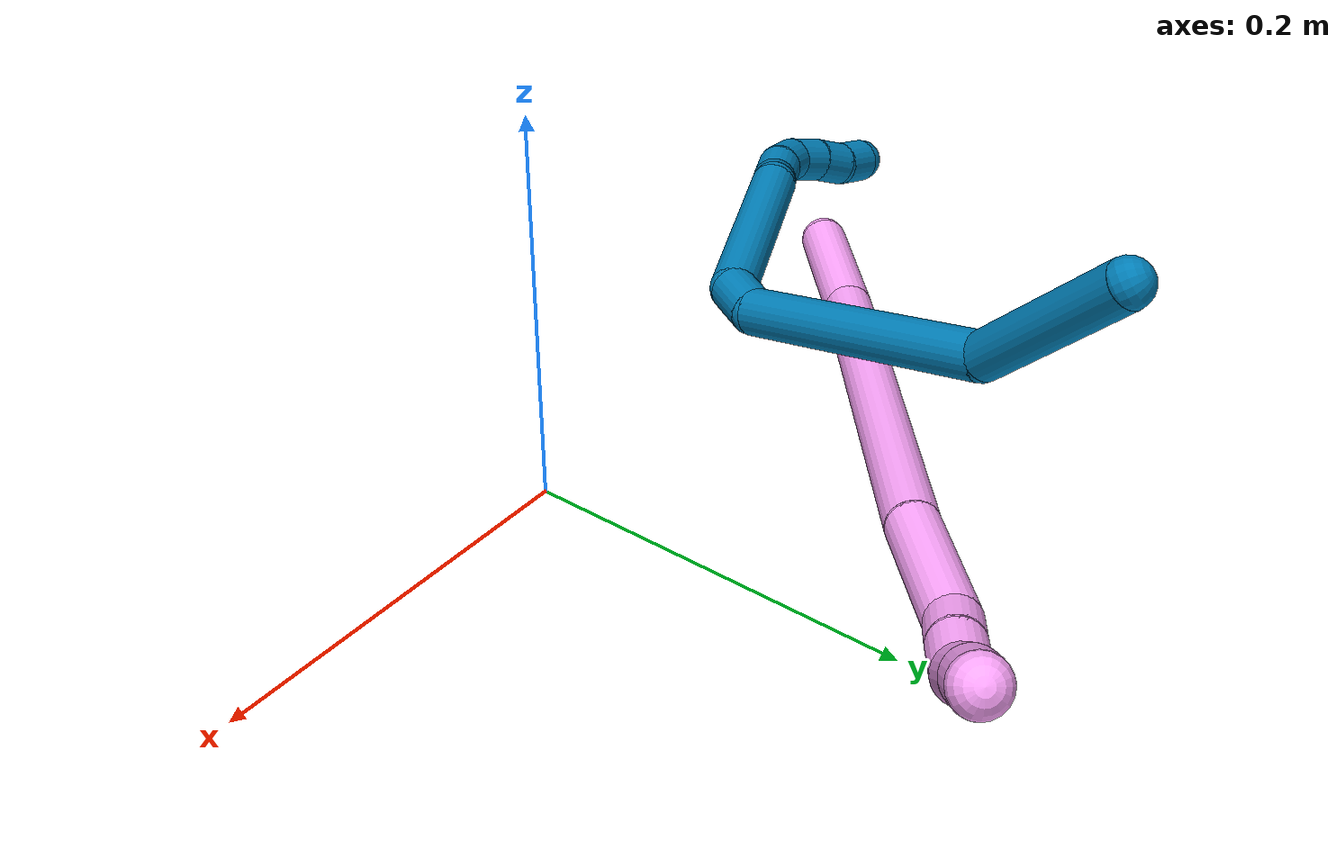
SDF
<sdf version="1.7">
 <world name="default">
  <model name="photoneo_s_sensor">
   <static>1</static>
   <pose>0 0 2 1.57079 1.57079 3.14159</pose>
   <link name="link">
    <inertial><mass>0.1</mass></inertial>
    <sensor name="sensor" type="depth">
     <update_rate>30</update_rate>
     <camera>
      <horizontal_fov>1.22</horizontal_fov>
      <image><width>1920</width><height>1200</height><format>B8G8R8</format></image>
      <clip><near>0.1</near><far>4</far></clip>
      <depth_camera><output>points</output></depth_camera>
     </camera>
     <plugin name="camera_plugin" filename="libgazebo_ros_depth_camera.so">
      <baseline>0.2</baseline>
      <alwaysOn>1</alwaysOn>
      <updateRate>0.0</updateRate>
      <cameraName>camera_ir</cameraName>
      <imageTopicName>/camera/color/image_raw</imageTopicName>
      <cameraInfoTopicName>/camera/color/camera_info</cameraInfoTopicName>
      <depthImageTopicName>/camera/depth/image_raw</depthImageTopicName>
      <depthImageCameraInfoTopicName>/camera/depth/camera_info</depthImageCameraInfoTopicName>
      <pointCloudTopicName>/camera/depth/points</pointCloudTopicName>
      <frameName>fr_optical</frameName>
      <pointCloudCutoff>0.1</pointCloudCutoff>
      <pointCloudCutoffMax>2.0</pointCloudCutoffMax>
      <distortionK1>0</distortionK1>
      <distortionK2>0</distortionK2>
      <distortionK3>0</distortionK3>
      <distortionT1>0</distortionT1>
      <distortionT2>0</distortionT2>
      <CxPrime>0</CxPrime>
      <Cx>0</Cx>
      <Cy>0</Cy>
      <focalLength>0</focalLength>
      <hackBaseline>0</hackBaseline>
     </plugin>
    </sensor>
   </link>
  </model>
  <model name="bin">
   <static>1</static>
   <link name="bottom">
    <collision name="collision-bottom">
     <pose>0 0 -0.01 0 -0 0</pose>
     <geometry><box><size>0.8 0.6 0.02</size></box></geometry>
     <surface>
      <friction><ode><mu>100</mu><mu2>100</mu2></ode></friction>
      <contact><collide_bitmask>65535</collide_bitmask></contact>
     </surface>
    </collision>
   </link>
   <link name="west_wall">
    <collision name="collision-west_wall">
     <pose>-0.41 0 0.1 0 -0 0</pose>
     <geometry><box><size>0.02 0.6 0.2</size></box></geometry>
     <surface>
      <friction><ode><mu>100</mu><mu2>100</mu2></ode></friction>
      <contact><collide_bitmask>65535</collide_bitmask></contact>
     </surface>
    </collision>
   </link>
   <link name="east_wall">
    <collision name="collision-east_wall">
     <pose>0.41 0 0.1 0 -0 0</pose>
     <geometry><box><size>0.02 0.6 0.2</size></box></geometry>
     <surface>
      <friction><ode><mu>100</mu><mu2>100</mu2></ode></friction>
      <contact><collide_bitmask>65535</collide_bitmask></contact>
     </surface>
    </collision>
   </link>
   <link name="south_wall">
    <collision name="collision-south_wall">
     <pose>0 -0.31 0.1 0 -0 0</pose>
     <geometry><box><size>0.8 0.02 0.2</size></box></geometry>
     <surface>
      <friction><ode><mu>100</mu><mu2>100</mu2></ode></friction>
      <contact><collide_bitmask>65535</collide_bitmask></contact>
     </surface>
    </collision>
   </link>
   <link name="north_wall">
    <collision name="collision-north_wall">
     <pose>0 0.31 0.1 0 -0 0</pose>
     <geometry><box><size>0.8 0.02 0.2</size></box></geometry>
     <surface>
      <friction><ode><mu>100</mu><mu2>100</mu2></ode></friction>
      <contact><collide_bitmask>65535</collide_bitmask></contact>
     </surface>
    </collision>
   </link>
  </model>
  <model name="4">
   <static>0</static>
   <link name="4">
    <collision name="collision-cylinder-e_1_1_4">
     <pose>-0.011271 -0.022414 0.034307 0.578705 -0.2684 -0.080345</pose>
     <geometry><cylinder><radius>0.0125</radius><length>0.085003</length></cylinder></geometry>
     <surface>
      <friction><ode><mu>1.16</mu><mu2>1.16</mu2><slip1>0</slip1><slip2>0</slip2></ode></friction>
      <contact><ode><kp>1e+06</kp><kd>1</kd><max_vel>0</max_vel><min_depth>0.001</min_depth></ode></contact>
     </surface>
    </collision>
    <visual name="visual-cylinder-e_1_1_4">
     <pose>-0.011271 -0.022414 0.034307 0.578705 -0.2684 -0.080345</pose>
     <geometry><cylinder><radius>0.0125</radius><length>0.085003</length></cylinder></geometry>
     <material><ambient>1 0.65098 0.996078 1</ambient></material>
    </visual>
    <collision name="collision-cylinder-e_2_4_5">
     <pose>-0.055911 -0.097949 0.17419 0.466176 -0.27518 -0.06572</pose>
     <geometry><cylinder><radius>0.0125</radius><length>0.245615</length></cylinder></geometry>
     <surface>
      <friction><ode><mu>1.16</mu><mu2>1.16</mu2><slip1>0</slip1><slip2>0</slip2></ode></friction>
      <contact><ode><kp>1e+06</kp><kd>1</kd><max_vel>0</max_vel><min_depth>0.001</min_depth></ode></contact>
     </surface>
    </collision>
    <visual name="visual-cylinder-e_2_4_5">
     <pose>-0.055911 -0.097949 0.17419 0.466176 -0.27518 -0.06572</pose>
     <geometry><cylinder><radius>0.0125</radius><length>0.245615</length></cylinder></geometry>
     <material><ambient>1 0.65098 0.996078 1</ambient></material>
    </visual>
    <collision name="collision-cylinder-e_3_5_6">
     <pose>-0.097319 -0.169511 0.308512 0.57034 -0.231154 -0.068042</pose>
     <geometry><cylinder><radius>0.0125</radius><length>0.070172</length></cylinder></geometry>
     <surface>
      <friction><ode><mu>1.16</mu><mu2>1.16</mu2><slip1>0</slip1><slip2>0</slip2></ode></friction>
      <contact><ode><kp>1e+06</kp><kd>1</kd><max_vel>0</max_vel><min_depth>0.001</min_depth></ode></contact>
     </surface>
    </collision>
    <visual name="visual-cylinder-e_3_5_6">
     <pose>-0.097319 -0.169511 0.308512 0.57034 -0.231154 -0.068042</pose>
     <geometry><cylinder><radius>0.0125</radius><length>0.070172</length></cylinder></geometry>
     <material><ambient>1 0.65098 0.996078 1</ambient></material>
    </visual>
    <collision name="collision-cylinder-e_4_6_7">
     <pose>-0.108418 -0.190824 0.346764 0.293572 -0.299065 -0.044542</pose>
     <geometry><cylinder><radius>0.0125</radius><length>0.020782</length></cylinder></geometry>
     <surface>
      <friction><ode><mu>1.16</mu><mu2>1.16</mu2><slip1>0</slip1><slip2>0</slip2></ode></friction>
      <contact><ode><kp>1e+06</kp><kd>1</kd><max_vel>0</max_vel><min_depth>0.001</min_depth></ode></contact>
     </surface>
    </collision>
    <visual name="visual-cylinder-e_4_6_7">
     <pose>-0.108418 -0.190824 0.346764 0.293572 -0.299065 -0.044542</pose>
     <geometry><cylinder><radius>0.0125</radius><length>0.020782</length></cylinder></geometry>
     <material><ambient>1 0.65098 0.996078 1</ambient></material>
    </visual>
    <collision name="collision-cylinder-e_5_7_8">
     <pose>-0.114892 -0.197766 0.365622 0.410346 -0.322889 -0.067758</pose>
     <geometry><cylinder><radius>0.0125</radius><length>0.02151</length></cylinder></geometry>
     <surface>
      <friction><ode><mu>1.16</mu><mu2>1.16</mu2><slip1>0</slip1><slip2>0</slip2></ode></friction>
      <contact><ode><kp>1e+06</kp><kd>1</kd><max_vel>0</max_vel><min_depth>0.001</min_depth></ode></contact>
     </surface>
    </collision>
    <visual name="visual-cylinder-e_5_7_8">
     <pose>-0.114892 -0.197766 0.365622 0.410346 -0.322889 -0.067758</pose>
     <geometry><cylinder><radius>0.0125</radius><length>0.02151</length></cylinder></geometry>
     <material><ambient>1 0.65098 0.996078 1</ambient></material>
    </visual>
    <collision name="collision-cylinder-e_6_8_9">
     <pose>-0.118901 -0.201142 0.392791 -0.038857 -0.033417 0.000649</pose>
     <geometry><cylinder><radius>0.0125</radius><length>0.035679</length></cylinder></geometry>
     <surface>
      <friction><ode><mu>1.16</mu><mu2>1.16</mu2><slip1>0</slip1><slip2>0</slip2></ode></friction>
      <contact><ode><kp>1e+06</kp><kd>1</kd><max_vel>0</max_vel><min_depth>0.001</min_depth></ode></contact>
     </surface>
    </collision>
    <visual name="visual-cylinder-e_6_8_9">
     <pose>-0.118901 -0.201142 0.392791 -0.038857 -0.033417 0.000649</pose>
     <geometry><cylinder><radius>0.0125</radius><length>0.035679</length></cylinder></geometry>
     <material><ambient>1 0.65098 0.996078 1</ambient></material>
    </visual>
    <collision name="collision-cylinder-e_7_9_2">
     <pose>-0.120315 -0.200927 0.421184 0.04513 -0.077093 -0.001741</pose>
     <geometry><cylinder><radius>0.0125</radius><length>0.021239</length></cylinder></geometry>
     <surface>
      <friction><ode><mu>1.16</mu><mu2>1.16</mu2><slip1>0</slip1><slip2>0</slip2></ode></friction>
      <contact><ode><kp>1e+06</kp><kd>1</kd><max_vel>0</max_vel><min_depth>0.001</min_depth></ode></contact>
     </surface>
    </collision>
    <visual name="visual-cylinder-e_7_9_2">
     <pose>-0.120315 -0.200927 0.421184 0.04513 -0.077093 -0.001741</pose>
     <geometry><cylinder><radius>0.0125</radius><length>0.021239</length></cylinder></geometry>
     <material><ambient>1 0.65098 0.996078 1</ambient></material>
    </visual>
    <collision name="collision-sphere-2">
     <pose>-0.121133 -0.201405 0.431761 0 -0 0</pose>
     <geometry><sphere><radius>0.0125</radius></sphere></geometry>
     <surface>
      <friction><ode><mu>1.16</mu><mu2>1.16</mu2><slip1>0</slip1><slip2>0</slip2></ode></friction>
      <contact><ode><kp>1e+06</kp><kd>1</kd><max_vel>0</max_vel><min_depth>0.001</min_depth></ode></contact>
     </surface>
    </collision>
    <visual name="visual-sphere-2">
     <pose>-0.121133 -0.201405 0.431761 0 -0 0</pose>
     <geometry><sphere><radius>0.0125</radius></sphere></geometry>
     <material><ambient>1 0.65098 0.996078 1</ambient></material>
    </visual>
    <collision name="collision-sphere-9">
     <pose>-0.119497 -0.20045 0.410607 0 -0 0</pose>
     <geometry><sphere><radius>0.0125</radius></sphere></geometry>
     <surface>
      <friction><ode><mu>1.16</mu><mu2>1.16</mu2><slip1>0</slip1><slip2>0</slip2></ode></friction>
      <contact><ode><kp>1e+06</kp><kd>1</kd><max_vel>0</max_vel><min_depth>0.001</min_depth></ode></contact>
     </surface>
    </collision>
    <visual name="visual-sphere-9">
     <pose>-0.119497 -0.20045 0.410607 0 -0 0</pose>
     <geometry><sphere><radius>0.0125</radius></sphere></geometry>
     <material><ambient>1 0.65098 0.996078 1</ambient></material>
    </visual>
    <collision name="collision-sphere-4">
     <pose>-0.022542 -0.044827 0.068614 0 -0 0</pose>
     <geometry><sphere><radius>0.0125</radius></sphere></geometry>
     <surface>
      <friction><ode><mu>1.16</mu><mu2>1.16</mu2><slip1>0</slip1><slip2>0</slip2></ode></friction>
      <contact><ode><kp>1e+06</kp><kd>1</kd><max_vel>0</max_vel><min_depth>0.001</min_depth></ode></contact>
     </surface>
    </collision>
    <visual name="visual-sphere-4">
     <pose>-0.022542 -0.044827 0.068614 0 -0 0</pose>
     <geometry><sphere><radius>0.0125</radius></sphere></geometry>
     <material><ambient>1 0.65098 0.996078 1</ambient></material>
    </visual>
    <collision name="collision-sphere-1">
     <geometry><sphere><radius>0.0125</radius></sphere></geometry>
     <surface>
      <friction><ode><mu>1.16</mu><mu2>1.16</mu2><slip1>0</slip1><slip2>0</slip2></ode></friction>
      <contact><ode><kp>1e+06</kp><kd>1</kd><max_vel>0</max_vel><min_depth>0.001</min_depth></ode></contact>
     </surface>
    </collision>
    <visual name="visual-sphere-1">
     <geometry><sphere><radius>0.0125</radius></sphere></geometry>
     <material><ambient>1 0.65098 0.996078 1</ambient></material>
    </visual>
    <collision name="collision-sphere-8">
     <pose>-0.118305 -0.201835 0.374975 0 -0 0</pose>
     <geometry><sphere><radius>0.0125</radius></sphere></geometry>
     <surface>
      <friction><ode><mu>1.16</mu><mu2>1.16</mu2><slip1>0</slip1><slip2>0</slip2></ode></friction>
      <contact><ode><kp>1e+06</kp><kd>1</kd><max_vel>0</max_vel><min_depth>0.001</min_depth></ode></contact>
     </surface>
    </collision>
    <visual name="visual-sphere-8">
     <pose>-0.118305 -0.201835 0.374975 0 -0 0</pose>
     <geometry><sphere><radius>0.0125</radius></sphere></geometry>
     <material><ambient>1 0.65098 0.996078 1</ambient></material>
    </visual>
    <collision name="collision-sphere-5">
     <pose>-0.08928 -0.151071 0.279765 0 -0 0</pose>
     <geometry><sphere><radius>0.0125</radius></sphere></geometry>
     <surface>
      <friction><ode><mu>1.16</mu><mu2>1.16</mu2><slip1>0</slip1><slip2>0</slip2></ode></friction>
      <contact><ode><kp>1e+06</kp><kd>1</kd><max_vel>0</max_vel><min_depth>0.001</min_depth></ode></contact>
     </surface>
    </collision>
    <visual name="visual-sphere-5">
     <pose>-0.08928 -0.151071 0.279765 0 -0 0</pose>
     <geometry><sphere><radius>0.0125</radius></sphere></geometry>
     <material><ambient>1 0.65098 0.996078 1</ambient></material>
    </visual>
    <collision name="collision-sphere-6">
     <pose>-0.105357 -0.18795 0.33726 0 -0 0</pose>
     <geometry><sphere><radius>0.0125</radius></sphere></geometry>
     <surface>
      <friction><ode><mu>1.16</mu><mu2>1.16</mu2><slip1>0</slip1><slip2>0</slip2></ode></friction>
      <contact><ode><kp>1e+06</kp><kd>1</kd><max_vel>0</max_vel><min_depth>0.001</min_depth></ode></contact>
     </surface>
    </collision>
    <visual name="visual-sphere-6">
     <pose>-0.105357 -0.18795 0.33726 0 -0 0</pose>
     <geometry><sphere><radius>0.0125</radius></sphere></geometry>
     <material><ambient>1 0.65098 0.996078 1</ambient></material>
    </visual>
    <collision name="collision-sphere-7">
     <pose>-0.11148 -0.193697 0.356269 0 -0 0</pose>
     <geometry><sphere><radius>0.0125</radius></sphere></geometry>
     <surface>
      <friction><ode><mu>1.16</mu><mu2>1.16</mu2><slip1>0</slip1><slip2>0</slip2></ode></friction>
      <contact><ode><kp>1e+06</kp><kd>1</kd><max_vel>0</max_vel><min_depth>0.001</min_depth></ode></contact>
     </surface>
    </collision>
    <visual name="visual-sphere-7">
     <pose>-0.11148 -0.193697 0.356269 0 -0 0</pose>
     <geometry><sphere><radius>0.0125</radius></sphere></geometry>
     <material><ambient>1 0.65098 0.996078 1</ambient></material>
    </visual>
    <inertial>
     <pose>-0.066084 -0.115043 0.210759 0 -0 0</pose>
     <mass>0.5</mass>
     <inertia>
      <ixx>0.001193</ixx>
      <ixy>0</ixy>
      <ixz>0</ixz>
      <iyy>0.001101</iyy>
      <iyz>0</iyz>
      <izz>0.000979</izz>
     </inertia>
    </inertial>
   </link>
   <pose>-0.269775 -0.020984 0.011494 0.777384 -0.451999 2.65462</pose>
  </model>
  <model name="9">
   <static>0</static>
   <link name="9">
    <collision name="collision-cylinder-e_1_1_4">
     <pose>-0.005546 -0.023243 -0.043371 2.64963 -0.112224 -0.440216</pose>
     <geometry><cylinder><radius>0.0125</radius><length>0.099037</length></cylinder></geometry>
     <surface>
      <friction><ode><mu>1.16</mu><mu2>1.16</mu2><slip1>0</slip1><slip2>0</slip2></ode></friction>
      <contact><ode><kp>1e+06</kp><kd>1</kd><max_vel>0</max_vel><min_depth>0.001</min_depth></ode></contact>
     </surface>
    </collision>
    <visual name="visual-cylinder-e_1_1_4">
     <pose>-0.005546 -0.023243 -0.043371 2.64963 -0.112224 -0.440216</pose>
     <geometry><cylinder><radius>0.0125</radius><length>0.099037</length></cylinder></geometry>
     <material><ambient>0 0.490196 0.709804 1</ambient></material>
    </visual>
    <collision name="collision-cylinder-e_2_4_5">
     <pose>0.01914 -0.075692 -0.144597 2.67409 0.436467 1.49978</pose>
     <geometry><cylinder><radius>0.0125</radius><length>0.143024</length></cylinder></geometry>
     <surface>
      <friction><ode><mu>1.16</mu><mu2>1.16</mu2><slip1>0</slip1><slip2>0</slip2></ode></friction>
      <contact><ode><kp>1e+06</kp><kd>1</kd><max_vel>0</max_vel><min_depth>0.001</min_depth></ode></contact>
     </surface>
    </collision>
    <visual name="visual-cylinder-e_2_4_5">
     <pose>0.01914 -0.075692 -0.144597 2.67409 0.436467 1.49978</pose>
     <geometry><cylinder><radius>0.0125</radius><length>0.143024</length></cylinder></geometry>
     <material><ambient>0 0.490196 0.709804 1</ambient></material>
    </visual>
    <collision name="collision-cylinder-e_3_5_6">
     <pose>0.056363 -0.11427 -0.208413 2.13742 0.561778 0.967705</pose>
     <geometry><cylinder><radius>0.0125</radius><length>0.026251</length></cylinder></geometry>
     <surface>
      <friction><ode><mu>1.16</mu><mu2>1.16</mu2><slip1>0</slip1><slip2>0</slip2></ode></friction>
      <contact><ode><kp>1e+06</kp><kd>1</kd><max_vel>0</max_vel><min_depth>0.001</min_depth></ode></contact>
     </surface>
    </collision>
    <visual name="visual-cylinder-e_3_5_6">
     <pose>0.056363 -0.11427 -0.208413 2.13742 0.561778 0.967705</pose>
     <geometry><cylinder><radius>0.0125</radius><length>0.026251</length></cylinder></geometry>
     <material><ambient>0 0.490196 0.709804 1</ambient></material>
    </visual>
    <collision name="collision-cylinder-e_4_6_7">
     <pose>0.081128 -0.17508 -0.20977 1.48149 0.331459 0.303558</pose>
     <geometry><cylinder><radius>0.0125</radius><length>0.109234</length></cylinder></geometry>
     <surface>
      <friction><ode><mu>1.16</mu><mu2>1.16</mu2><slip1>0</slip1><slip2>0</slip2></ode></friction>
      <contact><ode><kp>1e+06</kp><kd>1</kd><max_vel>0</max_vel><min_depth>0.001</min_depth></ode></contact>
     </surface>
    </collision>
    <visual name="visual-cylinder-e_4_6_7">
     <pose>0.081128 -0.17508 -0.20977 1.48149 0.331459 0.303558</pose>
     <geometry><cylinder><radius>0.0125</radius><length>0.109234</length></cylinder></geometry>
     <material><ambient>0 0.490196 0.709804 1</ambient></material>
    </visual>
    <collision name="collision-cylinder-e_5_7_8">
     <pose>0.099376 -0.236629 -0.208236 1.86577 0.044895 0.060555</pose>
     <geometry><cylinder><radius>0.0125</radius><length>0.021156</length></cylinder></geometry>
     <surface>
      <friction><ode><mu>1.16</mu><mu2>1.16</mu2><slip1>0</slip1><slip2>0</slip2></ode></friction>
      <contact><ode><kp>1e+06</kp><kd>1</kd><max_vel>0</max_vel><min_depth>0.001</min_depth></ode></contact>
     </surface>
    </collision>
    <visual name="visual-cylinder-e_5_7_8">
     <pose>0.099376 -0.236629 -0.208236 1.86577 0.044895 0.060555</pose>
     <geometry><cylinder><radius>0.0125</radius><length>0.021156</length></cylinder></geometry>
     <material><ambient>0 0.490196 0.709804 1</ambient></material>
    </visual>
    <collision name="collision-cylinder-e_6_8_9">
     <pose>0.102402 -0.256913 -0.211629 1.60235 0.245566 0.253357</pose>
     <geometry><cylinder><radius>0.0125</radius><length>0.020986</length></cylinder></geometry>
     <surface>
      <friction><ode><mu>1.16</mu><mu2>1.16</mu2><slip1>0</slip1><slip2>0</slip2></ode></friction>
      <contact><ode><kp>1e+06</kp><kd>1</kd><max_vel>0</max_vel><min_depth>0.001</min_depth></ode></contact>
     </surface>
    </collision>
    <visual name="visual-cylinder-e_6_8_9">
     <pose>0.102402 -0.256913 -0.211629 1.60235 0.245566 0.253357</pose>
     <geometry><cylinder><radius>0.0125</radius><length>0.020986</length></cylinder></geometry>
     <material><ambient>0 0.490196 0.709804 1</ambient></material>
    </visual>
    <collision name="collision-cylinder-e_7_9_10">
     <pose>0.104679 -0.277144 -0.211224 1.49877 -0.02719 -0.025299</pose>
     <geometry><cylinder><radius>0.0125</radius><length>0.020176</length></cylinder></geometry>
     <surface>
      <friction><ode><mu>1.16</mu><mu2>1.16</mu2><slip1>0</slip1><slip2>0</slip2></ode></friction>
      <contact><ode><kp>1e+06</kp><kd>1</kd><max_vel>0</max_vel><min_depth>0.001</min_depth></ode></contact>
     </surface>
    </collision>
    <visual name="visual-cylinder-e_7_9_10">
     <pose>0.104679 -0.277144 -0.211224 1.49877 -0.02719 -0.025299</pose>
     <geometry><cylinder><radius>0.0125</radius><length>0.020176</length></cylinder></geometry>
     <material><ambient>0 0.490196 0.709804 1</ambient></material>
    </visual>
    <collision name="collision-cylinder-e_8_10_11">
     <pose>0.100671 -0.295728 -0.206707 1.1524 -0.380556 -0.249001</pose>
     <geometry><cylinder><radius>0.0125</radius><length>0.020101</length></cylinder></geometry>
     <surface>
      <friction><ode><mu>1.16</mu><mu2>1.16</mu2><slip1>0</slip1><slip2>0</slip2></ode></friction>
      <contact><ode><kp>1e+06</kp><kd>1</kd><max_vel>0</max_vel><min_depth>0.001</min_depth></ode></contact>
     </surface>
    </collision>
    <visual name="visual-cylinder-e_8_10_11">
     <pose>0.100671 -0.295728 -0.206707 1.1524 -0.380556 -0.249001</pose>
     <geometry><cylinder><radius>0.0125</radius><length>0.020101</length></cylinder></geometry>
     <material><ambient>0 0.490196 0.709804 1</ambient></material>
    </visual>
    <collision name="collision-cylinder-e_9_11_12">
     <pose>0.092155 -0.312394 -0.199612 1.18516 -0.498664 -0.339582</pose>
     <geometry><cylinder><radius>0.0125</radius><length>0.020004</length></cylinder></geometry>
     <surface>
      <friction><ode><mu>1.16</mu><mu2>1.16</mu2><slip1>0</slip1><slip2>0</slip2></ode></friction>
      <contact><ode><kp>1e+06</kp><kd>1</kd><max_vel>0</max_vel><min_depth>0.001</min_depth></ode></contact>
     </surface>
    </collision>
    <visual name="visual-cylinder-e_9_11_12">
     <pose>0.092155 -0.312394 -0.199612 1.18516 -0.498664 -0.339582</pose>
     <geometry><cylinder><radius>0.0125</radius><length>0.020004</length></cylinder></geometry>
     <material><ambient>0 0.490196 0.709804 1</ambient></material>
    </visual>
    <collision name="collision-cylinder-e_10_12_2">
     <pose>0.085082 -0.329708 -0.193006 1.22539 -0.230574 -0.162443</pose>
     <geometry><cylinder><radius>0.0125</radius><length>0.020033</length></cylinder></geometry>
     <surface>
      <friction><ode><mu>1.16</mu><mu2>1.16</mu2><slip1>0</slip1><slip2>0</slip2></ode></friction>
      <contact><ode><kp>1e+06</kp><kd>1</kd><max_vel>0</max_vel><min_depth>0.001</min_depth></ode></contact>
     </surface>
    </collision>
    <visual name="visual-cylinder-e_10_12_2">
     <pose>0.085082 -0.329708 -0.193006 1.22539 -0.230574 -0.162443</pose>
     <geometry><cylinder><radius>0.0125</radius><length>0.020033</length></cylinder></geometry>
     <material><ambient>0 0.490196 0.709804 1</ambient></material>
    </visual>
    <collision name="collision-sphere-2">
     <pose>0.082793 -0.338883 -0.189705 0 -0 0</pose>
     <geometry><sphere><radius>0.0125</radius></sphere></geometry>
     <surface>
      <friction><ode><mu>1.16</mu><mu2>1.16</mu2><slip1>0</slip1><slip2>0</slip2></ode></friction>
      <contact><ode><kp>1e+06</kp><kd>1</kd><max_vel>0</max_vel><min_depth>0.001</min_depth></ode></contact>
     </surface>
    </collision>
    <visual name="visual-sphere-2">
     <pose>0.082793 -0.338883 -0.189705 0 -0 0</pose>
     <geometry><sphere><radius>0.0125</radius></sphere></geometry>
     <material><ambient>0 0.490196 0.709804 1</ambient></material>
    </visual>
    <collision name="collision-sphere-12">
     <pose>0.087371 -0.320533 -0.196308 0 -0 0</pose>
     <geometry><sphere><radius>0.0125</radius></sphere></geometry>
     <surface>
      <friction><ode><mu>1.16</mu><mu2>1.16</mu2><slip1>0</slip1><slip2>0</slip2></ode></friction>
      <contact><ode><kp>1e+06</kp><kd>1</kd><max_vel>0</max_vel><min_depth>0.001</min_depth></ode></contact>
     </surface>
    </collision>
    <visual name="visual-sphere-12">
     <pose>0.087371 -0.320533 -0.196308 0 -0 0</pose>
     <geometry><sphere><radius>0.0125</radius></sphere></geometry>
     <material><ambient>0 0.490196 0.709804 1</ambient></material>
    </visual>
    <collision name="collision-sphere-11">
     <pose>0.096938 -0.304255 -0.202916 0 -0 0</pose>
     <geometry><sphere><radius>0.0125</radius></sphere></geometry>
     <surface>
      <friction><ode><mu>1.16</mu><mu2>1.16</mu2><slip1>0</slip1><slip2>0</slip2></ode></friction>
      <contact><ode><kp>1e+06</kp><kd>1</kd><max_vel>0</max_vel><min_depth>0.001</min_depth></ode></contact>
     </surface>
    </collision>
    <visual name="visual-sphere-11">
     <pose>0.096938 -0.304255 -0.202916 0 -0 0</pose>
     <geometry><sphere><radius>0.0125</radius></sphere></geometry>
     <material><ambient>0 0.490196 0.709804 1</ambient></material>
    </visual>
    <collision name="collision-sphere-10">
     <pose>0.104404 -0.287202 -0.210499 0 -0 0</pose>
     <geometry><sphere><radius>0.0125</radius></sphere></geometry>
     <surface>
      <friction><ode><mu>1.16</mu><mu2>1.16</mu2><slip1>0</slip1><slip2>0</slip2></ode></friction>
      <contact><ode><kp>1e+06</kp><kd>1</kd><max_vel>0</max_vel><min_depth>0.001</min_depth></ode></contact>
     </surface>
    </collision>
    <visual name="visual-sphere-10">
     <pose>0.104404 -0.287202 -0.210499 0 -0 0</pose>
     <geometry><sphere><radius>0.0125</radius></sphere></geometry>
     <material><ambient>0 0.490196 0.709804 1</ambient></material>
    </visual>
    <collision name="collision-sphere-9">
     <pose>0.104953 -0.267086 -0.21195 0 -0 0</pose>
     <geometry><sphere><radius>0.0125</radius></sphere></geometry>
     <surface>
      <friction><ode><mu>1.16</mu><mu2>1.16</mu2><slip1>0</slip1><slip2>0</slip2></ode></friction>
      <contact><ode><kp>1e+06</kp><kd>1</kd><max_vel>0</max_vel><min_depth>0.001</min_depth></ode></contact>
     </surface>
    </collision>
    <visual name="visual-sphere-9">
     <pose>0.104953 -0.267086 -0.21195 0 -0 0</pose>
     <geometry><sphere><radius>0.0125</radius></sphere></geometry>
     <material><ambient>0 0.490196 0.709804 1</ambient></material>
    </visual>
    <collision name="collision-sphere-4">
     <pose>-0.011091 -0.046486 -0.086743 0 -0 0</pose>
     <geometry><sphere><radius>0.0125</radius></sphere></geometry>
     <surface>
      <friction><ode><mu>1.16</mu><mu2>1.16</mu2><slip1>0</slip1><slip2>0</slip2></ode></friction>
      <contact><ode><kp>1e+06</kp><kd>1</kd><max_vel>0</max_vel><min_depth>0.001</min_depth></ode></contact>
     </surface>
    </collision>
    <visual name="visual-sphere-4">
     <pose>-0.011091 -0.046486 -0.086743 0 -0 0</pose>
     <geometry><sphere><radius>0.0125</radius></sphere></geometry>
     <material><ambient>0 0.490196 0.709804 1</ambient></material>
    </visual>
    <collision name="collision-sphere-1">
     <geometry><sphere><radius>0.0125</radius></sphere></geometry>
     <surface>
      <friction><ode><mu>1.16</mu><mu2>1.16</mu2><slip1>0</slip1><slip2>0</slip2></ode></friction>
      <contact><ode><kp>1e+06</kp><kd>1</kd><max_vel>0</max_vel><min_depth>0.001</min_depth></ode></contact>
     </surface>
    </collision>
    <visual name="visual-sphere-1">
     <geometry><sphere><radius>0.0125</radius></sphere></geometry>
     <material><ambient>0 0.490196 0.709804 1</ambient></material>
    </visual>
    <collision name="collision-sphere-8">
     <pose>0.099851 -0.24674 -0.211308 0 -0 0</pose>
     <geometry><sphere><radius>0.0125</radius></sphere></geometry>
     <surface>
      <friction><ode><mu>1.16</mu><mu2>1.16</mu2><slip1>0</slip1><slip2>0</slip2></ode></friction>
      <contact><ode><kp>1e+06</kp><kd>1</kd><max_vel>0</max_vel><min_depth>0.001</min_depth></ode></contact>
     </surface>
    </collision>
    <visual name="visual-sphere-8">
     <pose>0.099851 -0.24674 -0.211308 0 -0 0</pose>
     <geometry><sphere><radius>0.0125</radius></sphere></geometry>
     <material><ambient>0 0.490196 0.709804 1</ambient></material>
    </visual>
    <collision name="collision-sphere-5">
     <pose>0.049371 -0.104898 -0.20245 0 -0 0</pose>
     <geometry><sphere><radius>0.0125</radius></sphere></geometry>
     <surface>
      <friction><ode><mu>1.16</mu><mu2>1.16</mu2><slip1>0</slip1><slip2>0</slip2></ode></friction>
      <contact><ode><kp>1e+06</kp><kd>1</kd><max_vel>0</max_vel><min_depth>0.001</min_depth></ode></contact>
     </surface>
    </collision>
    <visual name="visual-sphere-5">
     <pose>0.049371 -0.104898 -0.20245 0 -0 0</pose>
     <geometry><sphere><radius>0.0125</radius></sphere></geometry>
     <material><ambient>0 0.490196 0.709804 1</ambient></material>
    </visual>
    <collision name="collision-sphere-6">
     <pose>0.063354 -0.123642 -0.214376 0 -0 0</pose>
     <geometry><sphere><radius>0.0125</radius></sphere></geometry>
     <surface>
      <friction><ode><mu>1.16</mu><mu2>1.16</mu2><slip1>0</slip1><slip2>0</slip2></ode></friction>
      <contact><ode><kp>1e+06</kp><kd>1</kd><max_vel>0</max_vel><min_depth>0.001</min_depth></ode></contact>
     </surface>
    </collision>
    <visual name="visual-sphere-6">
     <pose>0.063354 -0.123642 -0.214376 0 -0 0</pose>
     <geometry><sphere><radius>0.0125</radius></sphere></geometry>
     <material><ambient>0 0.490196 0.709804 1</ambient></material>
    </visual>
    <collision name="collision-sphere-7">
     <pose>0.098902 -0.226518 -0.205164 0 -0 0</pose>
     <geometry><sphere><radius>0.0125</radius></sphere></geometry>
     <surface>
      <friction><ode><mu>1.16</mu><mu2>1.16</mu2><slip1>0</slip1><slip2>0</slip2></ode></friction>
      <contact><ode><kp>1e+06</kp><kd>1</kd><max_vel>0</max_vel><min_depth>0.001</min_depth></ode></contact>
     </surface>
    </collision>
    <visual name="visual-sphere-7">
     <pose>0.098902 -0.226518 -0.205164 0 -0 0</pose>
     <geometry><sphere><radius>0.0125</radius></sphere></geometry>
     <material><ambient>0 0.490196 0.709804 1</ambient></material>
    </visual>
    <inertial>
     <pose>0.048929 -0.140079 -0.156968 0 -0 0</pose>
     <mass>0.5</mass>
     <inertia>
      <ixx>0.000433</ixx>
      <ixy>0</ixy>
      <ixz>0</ixz>
      <iyy>0.000184</iyy>
      <iyz>0</iyz>
      <izz>0.00011</izz>
     </inertia>
    </inertial>
   </link>
   <pose>-0.122919 0.228383 0.140829 0.431485 -0.906149 -1.61841</pose>
  </model>
 </world>
</sdf>
